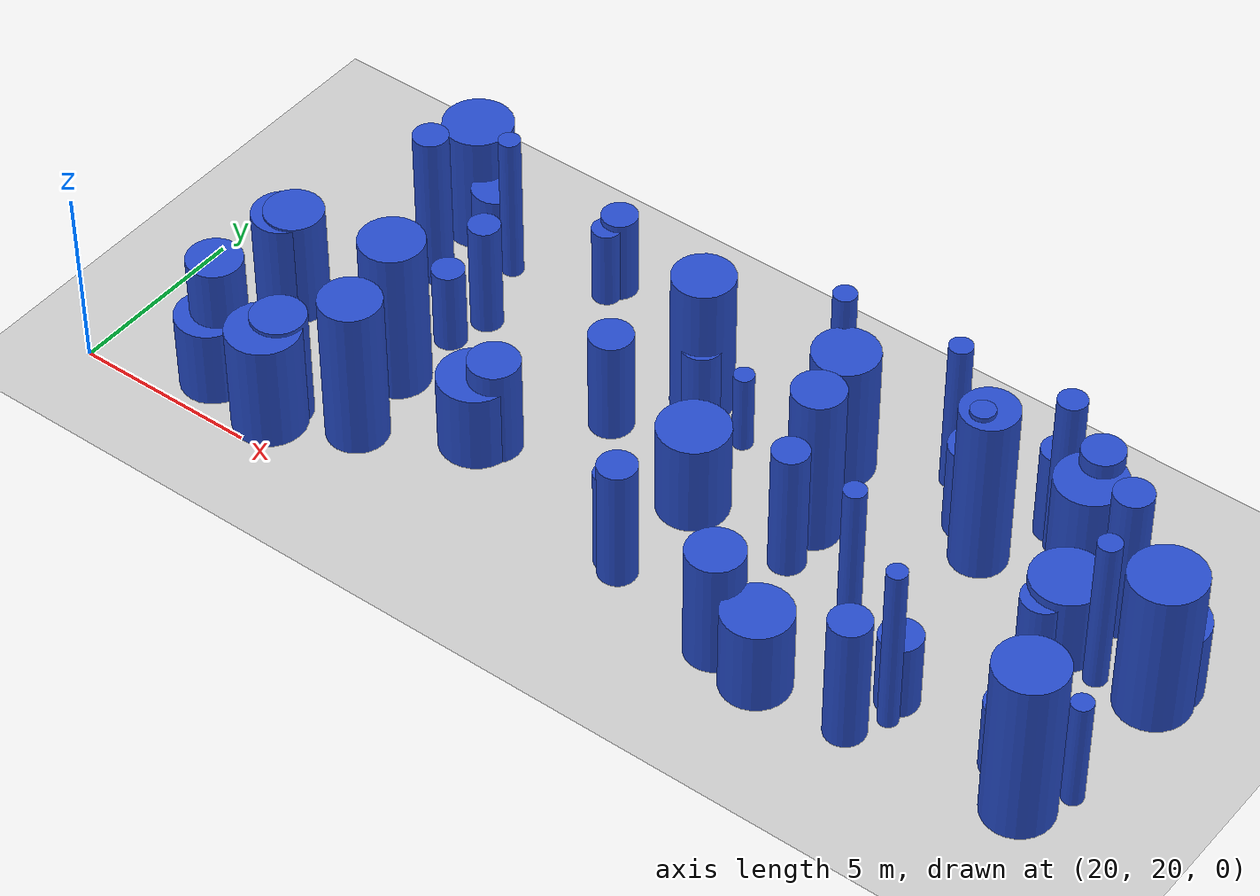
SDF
<sdf version="1.6">
 <world name="default">
  <model name="ground_plane">
   <static>1</static>
   <link name="link">
    <collision name="collision">
     <geometry><plane><normal>0 0 1</normal><size>100 100</size></plane></geometry>
     <surface><friction><ode><mu>100</mu><mu2>50</mu2></ode></friction></surface>
    </collision>
    <visual name="visual">
     <cast_shadows>0</cast_shadows>
     <geometry><plane><normal>0 0 1</normal><size>100 100</size></plane></geometry>
     <material>
      <script><uri>file://media/materials/scripts/gazebo.material</uri><name>Gazebo/Grey</name></script>
     </material>
    </visual>
   </link>
  </model>
  <model name="5">
   <static>0</static>
   <link name="link">
    <inertial>
     <mass>2</mass>
     <inertia><ixx>2.58297</ixx><ixy>0</ixy><ixz>0</ixz><iyy>2.58297</iyy><iyz>0</iyz><izz>0.837419</izz></inertia>
    </inertial>
    <collision name="collision">
     <geometry><cylinder><length>3.60355</length><radius>0.915106</radius></cylinder></geometry>
     <surface><contact><collide_without_contact>1</collide_without_contact></contact></surface>
    </collision>
    <visual name="visual">
     <geometry><cylinder><length>3.60355</length><radius>0.915106</radius></cylinder></geometry>
     <material>
      <script><uri>file://media/materials/scripts/gazebo.material</uri><name>Gazebo/Blue</name></script>
     </material>
    </visual>
    <gravity>0</gravity>
   </link>
   <pose>44.1312 28.2563 1.80178 0 -0 0</pose>
  </model>
  <model name="8">
   <static>0</static>
   <link name="link">
    <inertial>
     <mass>2</mass>
     <inertia><ixx>3.23535</ixx><ixy>0</ixy><ixz>0</ixz><iyy>3.23535</iyy><iyz>0</iyz><izz>0.666389</izz></inertia>
    </inertial>
    <collision name="collision">
     <geometry><cylinder><length>4.17288</length><radius>0.816326</radius></cylinder></geometry>
     <surface><contact><collide_without_contact>1</collide_without_contact></contact></surface>
    </collision>
    <visual name="visual">
     <geometry><cylinder><length>4.17288</length><radius>0.816326</radius></cylinder></geometry>
     <material>
      <script><uri>file://media/materials/scripts/gazebo.material</uri><name>Gazebo/Blue</name></script>
     </material>
    </visual>
    <gravity>0</gravity>
   </link>
   <pose>33.2137 27.9199 2.08644 0 -0 0</pose>
  </model>
  <model name="9">
   <static>0</static>
   <link name="link">
    <inertial>
     <mass>2</mass>
     <inertia>
      <ixx>0.837934</ixx>
      <ixy>0</ixy>
      <ixz>0</ixz>
      <iyy>0.837934</iyy>
      <iyz>0</iyz>
      <izz>0.32901</izz>
     </inertia>
    </inertial>
    <collision name="collision">
     <geometry><cylinder><length>2.01012</length><radius>0.573593</radius></cylinder></geometry>
     <surface><contact><collide_without_contact>1</collide_without_contact></contact></surface>
    </collision>
    <visual name="visual">
     <geometry><cylinder><length>2.01012</length><radius>0.573593</radius></cylinder></geometry>
     <material>
      <script><uri>file://media/materials/scripts/gazebo.material</uri><name>Gazebo/Blue</name></script>
     </material>
    </visual>
    <gravity>0</gravity>
   </link>
   <pose>44.5713 25.7943 1.00506 0 -0 0</pose>
  </model>
  <model name="24">
   <static>0</static>
   <link name="link">
    <inertial>
     <mass>2</mass>
     <inertia><ixx>1.33949</ixx><ixy>0</ixy><ixz>0</ixz><iyy>1.33949</iyy><iyz>0</iyz><izz>0.222603</izz></inertia>
    </inertial>
    <collision name="collision">
     <geometry><cylinder><length>2.71462</length><radius>0.471809</radius></cylinder></geometry>
     <surface><contact><collide_without_contact>1</collide_without_contact></contact></surface>
    </collision>
    <visual name="visual">
     <geometry><cylinder><length>2.71462</length><radius>0.471809</radius></cylinder></geometry>
     <material>
      <script><uri>file://media/materials/scripts/gazebo.material</uri><name>Gazebo/Blue</name></script>
     </material>
    </visual>
    <gravity>0</gravity>
   </link>
   <pose>42.5584 29.4439 1.35731 0 -0 0</pose>
  </model>
  <model name="31">
   <static>0</static>
   <link name="link">
    <inertial>
     <mass>2</mass>
     <inertia><ixx>2.85237</ixx><ixy>0</ixy><ixz>0</ixz><iyy>2.85237</iyy><iyz>0</iyz><izz>0.298801</izz></inertia>
    </inertial>
    <collision name="collision">
     <geometry><cylinder><length>4.02714</length><radius>0.546627</radius></cylinder></geometry>
     <surface><contact><collide_without_contact>1</collide_without_contact></contact></surface>
    </collision>
    <visual name="visual">
     <geometry><cylinder><length>4.02714</length><radius>0.546627</radius></cylinder></geometry>
     <material>
      <script><uri>file://media/materials/scripts/gazebo.material</uri><name>Gazebo/Blue</name></script>
     </material>
    </visual>
    <gravity>0</gravity>
   </link>
   <pose>44.0403 28.8417 2.01357 0 -0 0</pose>
  </model>
  <model name="42">
   <static>0</static>
   <link name="link">
    <inertial>
     <mass>2</mass>
     <inertia>
      <ixx>3.99996</ixx>
      <ixy>0</ixy>
      <ixz>0</ixz>
      <iyy>3.99996</iyy>
      <iyz>0</iyz>
      <izz>0.0681669</izz>
     </inertia>
    </inertial>
    <collision name="collision">
     <geometry><cylinder><length>4.87804</length><radius>0.261088</radius></cylinder></geometry>
     <surface><contact><collide_without_contact>1</collide_without_contact></contact></surface>
    </collision>
    <visual name="visual">
     <geometry><cylinder><length>4.87804</length><radius>0.261088</radius></cylinder></geometry>
     <material>
      <script><uri>file://media/materials/scripts/gazebo.material</uri><name>Gazebo/Blue</name></script>
     </material>
    </visual>
    <gravity>0</gravity>
   </link>
   <pose>42.9274 22.0379 2.43902 0 -0 0</pose>
  </model>
  <model name="43">
   <static>0</static>
   <link name="link">
    <inertial>
     <mass>2</mass>
     <inertia><ixx>3.60699</ixx><ixy>0</ixy><ixz>0</ixz><iyy>3.60699</iyy><iyz>0</iyz><izz>0.218199</izz></inertia>
    </inertial>
    <collision name="collision">
     <geometry><cylinder><length>4.5812</length><radius>0.467118</radius></cylinder></geometry>
     <surface><contact><collide_without_contact>1</collide_without_contact></contact></surface>
    </collision>
    <visual name="visual">
     <geometry><cylinder><length>4.5812</length><radius>0.467118</radius></cylinder></geometry>
     <material>
      <script><uri>file://media/materials/scripts/gazebo.material</uri><name>Gazebo/Blue</name></script>
     </material>
    </visual>
    <gravity>0</gravity>
   </link>
   <pose>24.9631 27.6196 2.2906 0 -0 0</pose>
  </model>
  <model name="48">
   <static>0</static>
   <link name="link">
    <inertial>
     <mass>2</mass>
     <inertia><ixx>1.49969</ixx><ixy>0</ixy><ixz>0</ixz><iyy>1.49969</iyy><iyz>0</iyz><izz>0.145403</izz></inertia>
    </inertial>
    <collision name="collision">
     <geometry><cylinder><length>2.92608</length><radius>0.381317</radius></cylinder></geometry>
     <surface><contact><collide_without_contact>1</collide_without_contact></contact></surface>
    </collision>
    <visual name="visual">
     <geometry><cylinder><length>2.92608</length><radius>0.381317</radius></cylinder></geometry>
     <material>
      <script><uri>file://media/materials/scripts/gazebo.material</uri><name>Gazebo/Blue</name></script>
     </material>
    </visual>
    <gravity>0</gravity>
   </link>
   <pose>34.7366 22.1716 1.46304 0 -0 0</pose>
  </model>
  <model name="51">
   <static>0</static>
   <link name="link">
    <inertial>
     <mass>2</mass>
     <inertia><ixx>1.88248</ixx><ixy>0</ixy><ixz>0</ixz><iyy>1.88248</iyy><iyz>0</iyz><izz>0.65983</izz></inertia>
    </inertial>
    <collision name="collision">
     <geometry><cylinder><length>3.05211</length><radius>0.812299</radius></cylinder></geometry>
     <surface><contact><collide_without_contact>1</collide_without_contact></contact></surface>
    </collision>
    <visual name="visual">
     <geometry><cylinder><length>3.05211</length><radius>0.812299</radius></cylinder></geometry>
     <material>
      <script><uri>file://media/materials/scripts/gazebo.material</uri><name>Gazebo/Blue</name></script>
     </material>
    </visual>
    <gravity>0</gravity>
   </link>
   <pose>22.736 24.4549 1.52606 0 -0 0</pose>
  </model>
  <model name="56">
   <static>0</static>
   <link name="link">
    <inertial>
     <mass>2</mass>
     <inertia><ixx>1.5368</ixx><ixy>0</ixy><ixz>0</ixz><iyy>1.5368</iyy><iyz>0</iyz><izz>0.455787</izz></inertia>
    </inertial>
    <collision name="collision">
     <geometry><cylinder><length>2.8024</length><radius>0.67512</radius></cylinder></geometry>
     <surface><contact><collide_without_contact>1</collide_without_contact></contact></surface>
    </collision>
    <visual name="visual">
     <geometry><cylinder><length>2.8024</length><radius>0.67512</radius></cylinder></geometry>
     <material>
      <script><uri>file://media/materials/scripts/gazebo.material</uri><name>Gazebo/Blue</name></script>
     </material>
    </visual>
    <gravity>0</gravity>
   </link>
   <pose>30.1142 23.6523 1.4012 0 -0 0</pose>
  </model>
  <model name="67">
   <static>0</static>
   <link name="link">
    <inertial>
     <mass>2</mass>
     <inertia><ixx>1.92986</ixx><ixy>0</ixy><ixz>0</ixz><iyy>1.92986</iyy><iyz>0</iyz><izz>0.522508</izz></inertia>
    </inertial>
    <collision name="collision">
     <geometry><cylinder><length>3.16412</length><radius>0.722847</radius></cylinder></geometry>
     <surface><contact><collide_without_contact>1</collide_without_contact></contact></surface>
    </collision>
    <visual name="visual">
     <geometry><cylinder><length>3.16412</length><radius>0.722847</radius></cylinder></geometry>
     <material>
      <script><uri>file://media/materials/scripts/gazebo.material</uri><name>Gazebo/Blue</name></script>
     </material>
    </visual>
    <gravity>0</gravity>
   </link>
   <pose>25.2068 21.443 1.58206 0 -0 0</pose>
  </model>
  <model name="72">
   <static>0</static>
   <link name="link">
    <inertial>
     <mass>2</mass>
     <inertia><ixx>3.4078</ixx><ixy>0</ixy><ixz>0</ixz><iyy>3.4078</iyy><iyz>0</iyz><izz>0.0847471</izz></inertia>
    </inertial>
    <collision name="collision">
     <geometry><cylinder><length>4.49361</length><radius>0.291114</radius></cylinder></geometry>
     <surface><contact><collide_without_contact>1</collide_without_contact></contact></surface>
    </collision>
    <visual name="visual">
     <geometry><cylinder><length>4.49361</length><radius>0.291114</radius></cylinder></geometry>
     <material>
      <script><uri>file://media/materials/scripts/gazebo.material</uri><name>Gazebo/Blue</name></script>
     </material>
    </visual>
    <gravity>0</gravity>
   </link>
   <pose>40.4975 23.8881 2.24681 0 -0 0</pose>
  </model>
  <model name="79">
   <static>0</static>
   <link name="link">
    <inertial>
     <mass>2</mass>
     <inertia><ixx>2.78535</ixx><ixy>0</ixy><ixz>0</ixz><iyy>2.78535</iyy><iyz>0</iyz><izz>0.530146</izz></inertia>
    </inertial>
    <collision name="collision">
     <geometry><cylinder><length>3.88866</length><radius>0.728112</radius></cylinder></geometry>
     <surface><contact><collide_without_contact>1</collide_without_contact></contact></surface>
    </collision>
    <visual name="visual">
     <geometry><cylinder><length>3.88866</length><radius>0.728112</radius></cylinder></geometry>
     <material>
      <script><uri>file://media/materials/scripts/gazebo.material</uri><name>Gazebo/Blue</name></script>
     </material>
    </visual>
    <gravity>0</gravity>
   </link>
   <pose>23.1949 21.4732 1.94433 0 -0 0</pose>
  </model>
  <model name="92">
   <static>0</static>
   <link name="link">
    <inertial>
     <mass>2</mass>
     <inertia><ixx>1.00566</ixx><ixy>0</ixy><ixz>0</ixz><iyy>1.00566</iyy><iyz>0</iyz><izz>0.311472</izz></inertia>
    </inertial>
    <collision name="collision">
     <geometry><cylinder><length>2.25822</length><radius>0.558097</radius></cylinder></geometry>
     <surface><contact><collide_without_contact>1</collide_without_contact></contact></surface>
    </collision>
    <visual name="visual">
     <geometry><cylinder><length>2.25822</length><radius>0.558097</radius></cylinder></geometry>
     <material>
      <script><uri>file://media/materials/scripts/gazebo.material</uri><name>Gazebo/Blue</name></script>
     </material>
    </visual>
    <gravity>0</gravity>
   </link>
   <pose>33.4249 27.6001 1.12911 0 -0 0</pose>
  </model>
  <model name="96">
   <static>0</static>
   <link name="link">
    <inertial>
     <mass>2</mass>
     <inertia><ixx>4.18802</ixx><ixy>0</ixy><ixz>0</ixz><iyy>4.18802</iyy><iyz>0</iyz><izz>0.550125</izz></inertia>
    </inertial>
    <collision name="collision">
     <geometry><cylinder><length>4.84538</length><radius>0.741704</radius></cylinder></geometry>
     <surface><contact><collide_without_contact>1</collide_without_contact></contact></surface>
    </collision>
    <visual name="visual">
     <geometry><cylinder><length>4.84538</length><radius>0.741704</radius></cylinder></geometry>
     <material>
      <script><uri>file://media/materials/scripts/gazebo.material</uri><name>Gazebo/Blue</name></script>
     </material>
    </visual>
    <gravity>0</gravity>
   </link>
   <pose>41.6394 27.6337 2.42269 0 -0 0</pose>
  </model>
  <model name="104">
   <static>0</static>
   <link name="link">
    <inertial>
     <mass>2</mass>
     <inertia><ixx>2.2195</ixx><ixy>0</ixy><ixz>0</ixz><iyy>2.2195</iyy><iyz>0</iyz><izz>0.255192</izz></inertia>
    </inertial>
    <collision name="collision">
     <geometry><cylinder><length>3.5428</length><radius>0.505166</radius></cylinder></geometry>
     <surface><contact><collide_without_contact>1</collide_without_contact></contact></surface>
    </collision>
    <visual name="visual">
     <geometry><cylinder><length>3.5428</length><radius>0.505166</radius></cylinder></geometry>
     <material>
      <script><uri>file://media/materials/scripts/gazebo.material</uri><name>Gazebo/Blue</name></script>
     </material>
    </visual>
    <gravity>0</gravity>
   </link>
   <pose>35.1244 22.0143 1.7714 0 -0 0</pose>
  </model>
  <model name="122">
   <static>0</static>
   <link name="link">
    <inertial>
     <mass>2</mass>
     <inertia><ixx>1.62985</ixx><ixy>0</ixy><ixz>0</ixz><iyy>1.62985</iyy><iyz>0</iyz><izz>0.333872</izz></inertia>
    </inertial>
    <collision name="collision">
     <geometry><cylinder><length>2.96268</length><radius>0.577817</radius></cylinder></geometry>
     <surface><contact><collide_without_contact>1</collide_without_contact></contact></surface>
    </collision>
    <visual name="visual">
     <geometry><cylinder><length>2.96268</length><radius>0.577817</radius></cylinder></geometry>
     <material>
      <script><uri>file://media/materials/scripts/gazebo.material</uri><name>Gazebo/Blue</name></script>
     </material>
    </visual>
    <gravity>0</gravity>
   </link>
   <pose>31.8996 25.9543 1.48134 0 -0 0</pose>
  </model>
  <model name="124">
   <static>0</static>
   <link name="link">
    <inertial>
     <mass>2</mass>
     <inertia><ixx>1.21882</ixx><ixy>0</ixy><ixz>0</ixz><iyy>1.21882</iyy><iyz>0</iyz><izz>0.784384</izz></inertia>
    </inertial>
    <collision name="collision">
     <geometry><cylinder><length>2.22706</length><radius>0.885655</radius></cylinder></geometry>
     <surface><contact><collide_without_contact>1</collide_without_contact></contact></surface>
    </collision>
    <visual name="visual">
     <geometry><cylinder><length>2.22706</length><radius>0.885655</radius></cylinder></geometry>
     <material>
      <script><uri>file://media/materials/scripts/gazebo.material</uri><name>Gazebo/Blue</name></script>
     </material>
    </visual>
    <gravity>0</gravity>
   </link>
   <pose>23.1164 21.1853 1.11353 0 -0 0</pose>
  </model>
  <model name="136">
   <static>0</static>
   <link name="link">
    <inertial>
     <mass>2</mass>
     <inertia><ixx>2.0309</ixx><ixy>0</ixy><ixz>0</ixz><iyy>2.0309</iyy><iyz>0</iyz><izz>0.942114</izz></inertia>
    </inertial>
    <collision name="collision">
     <geometry><cylinder><length>3.05925</length><radius>0.970626</radius></cylinder></geometry>
     <surface><contact><collide_without_contact>1</collide_without_contact></contact></surface>
    </collision>
    <visual name="visual">
     <geometry><cylinder><length>3.05925</length><radius>0.970626</radius></cylinder></geometry>
     <material>
      <script><uri>file://media/materials/scripts/gazebo.material</uri><name>Gazebo/Blue</name></script>
     </material>
    </visual>
    <gravity>0</gravity>
   </link>
   <pose>25.1529 20.9383 1.52963 0 -0 0</pose>
  </model>
  <model name="149">
   <static>0</static>
   <link name="link">
    <inertial>
     <mass>2</mass>
     <inertia>
      <ixx>3.60129</ixx>
      <ixy>0</ixy>
      <ixz>0</ixz>
      <iyy>3.60129</iyy>
      <iyz>0</iyz>
      <izz>0.0940447</izz>
     </inertia>
    </inertial>
    <collision name="collision">
     <geometry><cylinder><length>4.61797</length><radius>0.306667</radius></cylinder></geometry>
     <surface><contact><collide_without_contact>1</collide_without_contact></contact></surface>
    </collision>
    <visual name="visual">
     <geometry><cylinder><length>4.61797</length><radius>0.306667</radius></cylinder></geometry>
     <material>
      <script><uri>file://media/materials/scripts/gazebo.material</uri><name>Gazebo/Blue</name></script>
     </material>
    </visual>
    <gravity>0</gravity>
   </link>
   <pose>36.5534 29.0598 2.30898 0 -0 0</pose>
  </model>
  <model name="181">
   <static>0</static>
   <link name="link">
    <inertial>
     <mass>2</mass>
     <inertia><ixx>1.56642</ixx><ixy>0</ixy><ixz>0</ixz><iyy>1.56642</iyy><iyz>0</iyz><izz>0.869834</izz></inertia>
    </inertial>
    <collision name="collision">
     <geometry><cylinder><length>2.60557</length><radius>0.932649</radius></cylinder></geometry>
     <surface><contact><collide_without_contact>1</collide_without_contact></contact></surface>
    </collision>
    <visual name="visual">
     <geometry><cylinder><length>2.60557</length><radius>0.932649</radius></cylinder></geometry>
     <material>
      <script><uri>file://media/materials/scripts/gazebo.material</uri><name>Gazebo/Blue</name></script>
     </material>
    </visual>
    <gravity>0</gravity>
   </link>
   <pose>35.1911 24.9028 1.30279 0 -0 0</pose>
  </model>
  <model name="182">
   <static>0</static>
   <link name="link">
    <inertial>
     <mass>2</mass>
     <inertia>
      <ixx>0.957731</ixx>
      <ixy>0</ixy>
      <ixz>0</ixz>
      <iyy>0.957731</iyy>
      <iyz>0</iyz>
      <izz>0.303056</izz>
     </inertia>
    </inertial>
    <collision name="collision">
     <geometry><cylinder><length>2.19937</length><radius>0.550506</radius></cylinder></geometry>
     <surface><contact><collide_without_contact>1</collide_without_contact></contact></surface>
    </collision>
    <visual name="visual">
     <geometry><cylinder><length>2.19937</length><radius>0.550506</radius></cylinder></geometry>
     <material>
      <script><uri>file://media/materials/scripts/gazebo.material</uri><name>Gazebo/Blue</name></script>
     </material>
    </visual>
    <gravity>0</gravity>
   </link>
   <pose>42.746 22.6564 1.09968 0 -0 0</pose>
  </model>
  <model name="185">
   <static>0</static>
   <link name="link">
    <inertial>
     <mass>2</mass>
     <inertia><ixx>1.36438</ixx><ixy>0</ixy><ixz>0</ixz><iyy>1.36438</iyy><iyz>0</iyz><izz>0.802086</izz></inertia>
    </inertial>
    <collision name="collision">
     <geometry><cylinder><length>2.40416</length><radius>0.895593</radius></cylinder></geometry>
     <surface><contact><collide_without_contact>1</collide_without_contact></contact></surface>
    </collision>
    <visual name="visual">
     <geometry><cylinder><length>2.40416</length><radius>0.895593</radius></cylinder></geometry>
     <material>
      <script><uri>file://media/materials/scripts/gazebo.material</uri><name>Gazebo/Blue</name></script>
     </material>
    </visual>
    <gravity>0</gravity>
   </link>
   <pose>39.8308 21.1172 1.20208 0 -0 0</pose>
  </model>
  <model name="186">
   <static>0</static>
   <link name="link">
    <inertial>
     <mass>2</mass>
     <inertia><ixx>1.10663</ixx><ixy>0</ixy><ixz>0</ixz><iyy>1.10663</iyy><iyz>0</iyz><izz>0.234851</izz></inertia>
    </inertial>
    <collision name="collision">
     <geometry><cylinder><length>2.43624</length><radius>0.484614</radius></cylinder></geometry>
     <surface><contact><collide_without_contact>1</collide_without_contact></contact></surface>
    </collision>
    <visual name="visual">
     <geometry><cylinder><length>2.43624</length><radius>0.484614</radius></cylinder></geometry>
     <material>
      <script><uri>file://media/materials/scripts/gazebo.material</uri><name>Gazebo/Blue</name></script>
     </material>
    </visual>
    <gravity>0</gravity>
   </link>
   <pose>29.0255 30.0436 1.21812 0 -0 0</pose>
  </model>
  <model name="194">
   <static>0</static>
   <link name="link">
    <inertial>
     <mass>2</mass>
     <inertia><ixx>3.84056</ixx><ixy>0</ixy><ixz>0</ixz><iyy>3.84056</iyy><iyz>0</iyz><izz>0.462859</izz></inertia>
    </inertial>
    <collision name="collision">
     <geometry><cylinder><length>4.65347</length><radius>0.680337</radius></cylinder></geometry>
     <surface><contact><collide_without_contact>1</collide_without_contact></contact></surface>
    </collision>
    <visual name="visual">
     <geometry><cylinder><length>4.65347</length><radius>0.680337</radius></cylinder></geometry>
     <material>
      <script><uri>file://media/materials/scripts/gazebo.material</uri><name>Gazebo/Blue</name></script>
     </material>
    </visual>
    <gravity>0</gravity>
   </link>
   <pose>38.0163 25.9434 2.32673 0 -0 0</pose>
  </model>
  <model name="199">
   <static>0</static>
   <link name="link">
    <inertial>
     <mass>2</mass>
     <inertia>
      <ixx>3.32704</ixx>
      <ixy>0</ixy>
      <ixz>0</ixz>
      <iyy>3.32704</iyy>
      <iyz>0</iyz>
      <izz>0.0950179</izz>
     </inertia>
    </inertial>
    <collision name="collision">
     <geometry><cylinder><length>4.4359</length><radius>0.30825</radius></cylinder></geometry>
     <surface><contact><collide_without_contact>1</collide_without_contact></contact></surface>
    </collision>
    <visual name="visual">
     <geometry><cylinder><length>4.4359</length><radius>0.30825</radius></cylinder></geometry>
     <material>
      <script><uri>file://media/materials/scripts/gazebo.material</uri><name>Gazebo/Blue</name></script>
     </material>
    </visual>
    <gravity>0</gravity>
   </link>
   <pose>39.6729 29.3954 2.21795 0 -0 0</pose>
  </model>
  <model name="216">
   <static>0</static>
   <link name="link">
    <inertial>
     <mass>2</mass>
     <inertia><ixx>1.2816</ixx><ixy>0</ixy><ixz>0</ixz><iyy>1.2816</iyy><iyz>0</iyz><izz>0.071283</izz></inertia>
    </inertial>
    <collision name="collision">
     <geometry><cylinder><length>2.73418</length><radius>0.266989</radius></cylinder></geometry>
     <surface><contact><collide_without_contact>1</collide_without_contact></contact></surface>
    </collision>
    <visual name="visual">
     <geometry><cylinder><length>2.73418</length><radius>0.266989</radius></cylinder></geometry>
     <material>
      <script><uri>file://media/materials/scripts/gazebo.material</uri><name>Gazebo/Blue</name></script>
     </material>
    </visual>
    <gravity>0</gravity>
   </link>
   <pose>36.6887 27.8581 1.36709 0 -0 0</pose>
  </model>
  <model name="224">
   <static>0</static>
   <link name="link">
    <inertial>
     <mass>2</mass>
     <inertia><ixx>4.17367</ixx><ixy>0</ixy><ixz>0</ixz><iyy>4.17367</iyy><iyz>0</iyz><izz>0.821314</izz></inertia>
    </inertial>
    <collision name="collision">
     <geometry><cylinder><length>4.75164</length><radius>0.906264</radius></cylinder></geometry>
     <surface><contact><collide_without_contact>1</collide_without_contact></contact></surface>
    </collision>
    <visual name="visual">
     <geometry><cylinder><length>4.75164</length><radius>0.906264</radius></cylinder></geometry>
     <material>
      <script><uri>file://media/materials/scripts/gazebo.material</uri><name>Gazebo/Blue</name></script>
     </material>
    </visual>
    <gravity>0</gravity>
   </link>
   <pose>46.7808 21.5998 2.37582 0 -0 0</pose>
  </model>
  <model name="231">
   <static>0</static>
   <link name="link">
    <inertial>
     <mass>2</mass>
     <inertia><ixx>1.2889</ixx><ixy>0</ixy><ixz>0</ixz><iyy>1.2889</iyy><iyz>0</iyz><izz>0.955074</izz></inertia>
    </inertial>
    <collision name="collision">
     <geometry><cylinder><length>2.20639</length><radius>0.977279</radius></cylinder></geometry>
     <surface><contact><collide_without_contact>1</collide_without_contact></contact></surface>
    </collision>
    <visual name="visual">
     <geometry><cylinder><length>2.20639</length><radius>0.977279</radius></cylinder></geometry>
     <material>
      <script><uri>file://media/materials/scripts/gazebo.material</uri><name>Gazebo/Blue</name></script>
     </material>
    </visual>
    <gravity>0</gravity>
   </link>
   <pose>47.3565 26.7718 1.1032 0 -0 0</pose>
  </model>
  <model name="237">
   <static>0</static>
   <link name="link">
    <inertial>
     <mass>2</mass>
     <inertia>
      <ixx>0.971185</ixx>
      <ixy>0</ixy>
      <ixz>0</ixz>
      <iyy>0.971185</iyy>
      <iyz>0</iyz>
      <izz>0.227514</izz>
     </inertia>
    </inertial>
    <collision name="collision">
     <geometry><cylinder><length>2.26816</length><radius>0.476984</radius></cylinder></geometry>
     <surface><contact><collide_without_contact>1</collide_without_contact></contact></surface>
    </collision>
    <visual name="visual">
     <geometry><cylinder><length>2.26816</length><radius>0.476984</radius></cylinder></geometry>
     <material>
      <script><uri>file://media/materials/scripts/gazebo.material</uri><name>Gazebo/Blue</name></script>
     </material>
    </visual>
    <gravity>0</gravity>
   </link>
   <pose>26.3188 23.1014 1.13408 0 -0 0</pose>
  </model>
  <model name="239">
   <static>0</static>
   <link name="link">
    <inertial>
     <mass>2</mass>
     <inertia><ixx>1.29959</ixx><ixy>0</ixy><ixz>0</ixz><iyy>1.29959</iyy><iyz>0</iyz><izz>0.903055</izz></inertia>
    </inertial>
    <collision name="collision">
     <geometry><cylinder><length>2.25575</length><radius>0.950292</radius></cylinder></geometry>
     <surface><contact><collide_without_contact>1</collide_without_contact></contact></surface>
    </collision>
    <visual name="visual">
     <geometry><cylinder><length>2.25575</length><radius>0.950292</radius></cylinder></geometry>
     <material>
      <script><uri>file://media/materials/scripts/gazebo.material</uri><name>Gazebo/Blue</name></script>
     </material>
    </visual>
    <gravity>0</gravity>
   </link>
   <pose>44.7788 26.4577 1.12787 0 -0 0</pose>
  </model>
  <model name="248">
   <static>0</static>
   <link name="link">
    <inertial>
     <mass>2</mass>
     <inertia><ixx>3.49577</ixx><ixy>0</ixy><ixz>0</ixz><iyy>3.49577</iyy><iyz>0</iyz><izz>0.656015</izz></inertia>
    </inertial>
    <collision name="collision">
     <geometry><cylinder><length>4.35965</length><radius>0.809948</radius></cylinder></geometry>
     <surface><contact><collide_without_contact>1</collide_without_contact></contact></surface>
    </collision>
    <visual name="visual">
     <geometry><cylinder><length>4.35965</length><radius>0.809948</radius></cylinder></geometry>
     <material>
      <script><uri>file://media/materials/scripts/gazebo.material</uri><name>Gazebo/Blue</name></script>
     </material>
    </visual>
    <gravity>0</gravity>
   </link>
   <pose>27.1257 21.9441 2.17983 0 -0 0</pose>
  </model>
  <model name="258">
   <static>0</static>
   <link name="link">
    <inertial>
     <mass>2</mass>
     <inertia>
      <ixx>0.903155</ixx>
      <ixy>0</ixy>
      <ixz>0</ixz>
      <iyy>0.903155</iyy>
      <iyz>0</iyz>
      <izz>0.348919</izz>
     </inertia>
    </inertial>
    <collision name="collision">
     <geometry><cylinder><length>2.09097</length><radius>0.590694</radius></cylinder></geometry>
     <surface><contact><collide_without_contact>1</collide_without_contact></contact></surface>
    </collision>
    <visual name="visual">
     <geometry><cylinder><length>2.09097</length><radius>0.590694</radius></cylinder></geometry>
     <material>
      <script><uri>file://media/materials/scripts/gazebo.material</uri><name>Gazebo/Blue</name></script>
     </material>
    </visual>
    <gravity>0</gravity>
   </link>
   <pose>45.7898 22.4995 1.04549 0 -0 0</pose>
  </model>
  <model name="264">
   <static>0</static>
   <link name="link">
    <inertial>
     <mass>2</mass>
     <inertia><ixx>2.36644</ixx><ixy>0</ixy><ixz>0</ixz><iyy>2.36644</iyy><iyz>0</iyz><izz>0.283429</izz></inertia>
    </inertial>
    <collision name="collision">
     <geometry><cylinder><length>3.65354</length><radius>0.53238</radius></cylinder></geometry>
     <surface><contact><collide_without_contact>1</collide_without_contact></contact></surface>
    </collision>
    <visual name="visual">
     <geometry><cylinder><length>3.65354</length><radius>0.53238</radius></cylinder></geometry>
     <material>
      <script><uri>file://media/materials/scripts/gazebo.material</uri><name>Gazebo/Blue</name></script>
     </material>
    </visual>
    <gravity>0</gravity>
   </link>
   <pose>42.3264 21.1669 1.82677 0 -0 0</pose>
  </model>
  <model name="266">
   <static>0</static>
   <link name="link">
    <inertial>
     <mass>2</mass>
     <inertia><ixx>1.4408</ixx><ixy>0</ixy><ixz>0</ixz><iyy>1.4408</iyy><iyz>0</iyz><izz>0.768074</izz></inertia>
    </inertial>
    <collision name="collision">
     <geometry><cylinder><length>2.51805</length><radius>0.876398</radius></cylinder></geometry>
     <surface><contact><collide_without_contact>1</collide_without_contact></contact></surface>
    </collision>
    <visual name="visual">
     <geometry><cylinder><length>2.51805</length><radius>0.876398</radius></cylinder></geometry>
     <material>
      <script><uri>file://media/materials/scripts/gazebo.material</uri><name>Gazebo/Blue</name></script>
     </material>
    </visual>
    <gravity>0</gravity>
   </link>
   <pose>43.8139 29.0233 1.25902 0 -0 0</pose>
  </model>
  <model name="272">
   <static>0</static>
   <link name="link">
    <inertial>
     <mass>2</mass>
     <inertia>
      <ixx>1.69884</ixx>
      <ixy>0</ixy>
      <ixz>0</ixz>
      <iyy>1.69884</iyy>
      <iyz>0</iyz>
      <izz>0.0782253</izz>
     </inertia>
    </inertial>
    <collision name="collision">
     <geometry><cylinder><length>3.15569</length><radius>0.279688</radius></cylinder></geometry>
     <surface><contact><collide_without_contact>1</collide_without_contact></contact></surface>
    </collision>
    <visual name="visual">
     <geometry><cylinder><length>3.15569</length><radius>0.279688</radius></cylinder></geometry>
     <material>
      <script><uri>file://media/materials/scripts/gazebo.material</uri><name>Gazebo/Blue</name></script>
     </material>
    </visual>
    <gravity>0</gravity>
   </link>
   <pose>47.5592 22.6438 1.57784 0 -0 0</pose>
  </model>
  <model name="299">
   <static>0</static>
   <link name="link">
    <inertial>
     <mass>2</mass>
     <inertia>
      <ixx>0.921945</ixx>
      <ixy>0</ixy>
      <ixz>0</ixz>
      <iyy>0.921945</iyy>
      <iyz>0</iyz>
      <izz>0.149875</izz>
     </inertia>
    </inertial>
    <collision name="collision">
     <geometry><cylinder><length>2.25434</length><radius>0.387137</radius></cylinder></geometry>
     <surface><contact><collide_without_contact>1</collide_without_contact></contact></surface>
    </collision>
    <visual name="visual">
     <geometry><cylinder><length>2.25434</length><radius>0.387137</radius></cylinder></geometry>
     <material>
      <script><uri>file://media/materials/scripts/gazebo.material</uri><name>Gazebo/Blue</name></script>
     </material>
    </visual>
    <gravity>0</gravity>
   </link>
   <pose>28.9395 29.6033 1.12717 0 -0 0</pose>
  </model>
  <model name="330">
   <static>0</static>
   <link name="link">
    <inertial>
     <mass>2</mass>
     <inertia><ixx>4.17226</ixx><ixy>0</ixy><ixz>0</ixz><iyy>4.17226</iyy><iyz>0</iyz><izz>0.101442</izz></inertia>
    </inertial>
    <collision name="collision">
     <geometry><cylinder><length>4.97285</length><radius>0.318499</radius></cylinder></geometry>
     <surface><contact><collide_without_contact>1</collide_without_contact></contact></surface>
    </collision>
    <visual name="visual">
     <geometry><cylinder><length>4.97285</length><radius>0.318499</radius></cylinder></geometry>
     <material>
      <script><uri>file://media/materials/scripts/gazebo.material</uri><name>Gazebo/Blue</name></script>
     </material>
    </visual>
    <gravity>0</gravity>
   </link>
   <pose>41.5867 27.4162 2.48642 0 -0 0</pose>
  </model>
  <model name="344">
   <static>0</static>
   <link name="link">
    <inertial>
     <mass>2</mass>
     <inertia><ixx>1.82524</ixx><ixy>0</ixy><ixz>0</ixz><iyy>1.82524</iyy><iyz>0</iyz><izz>0.178721</izz></inertia>
    </inertial>
    <collision name="collision">
     <geometry><cylinder><length>3.22727</length><radius>0.422754</radius></cylinder></geometry>
     <surface><contact><collide_without_contact>1</collide_without_contact></contact></surface>
    </collision>
    <visual name="visual">
     <geometry><cylinder><length>3.22727</length><radius>0.422754</radius></cylinder></geometry>
     <material>
      <script><uri>file://media/materials/scripts/gazebo.material</uri><name>Gazebo/Blue</name></script>
     </material>
    </visual>
    <gravity>0</gravity>
   </link>
   <pose>27.1359 26.9899 1.61364 0 -0 0</pose>
  </model>
  <model name="356">
   <static>0</static>
   <link name="link">
    <inertial>
     <mass>2</mass>
     <inertia><ixx>3.23111</ixx><ixy>0</ixy><ixz>0</ixz><iyy>3.23111</iyy><iyz>0</iyz><izz>0.254097</izz></inertia>
    </inertial>
    <collision name="collision">
     <geometry><cylinder><length>4.3156</length><radius>0.504081</radius></cylinder></geometry>
     <surface><contact><collide_without_contact>1</collide_without_contact></contact></surface>
    </collision>
    <visual name="visual">
     <geometry><cylinder><length>4.3156</length><radius>0.504081</radius></cylinder></geometry>
     <material>
      <script><uri>file://media/materials/scripts/gazebo.material</uri><name>Gazebo/Blue</name></script>
     </material>
    </visual>
    <gravity>0</gravity>
   </link>
   <pose>45.4904 27.8195 2.1578 0 -0 0</pose>
  </model>
  <model name="364">
   <static>0</static>
   <link name="link">
    <inertial>
     <mass>2</mass>
     <inertia><ixx>2.72209</ixx><ixy>0</ixy><ixz>0</ixz><iyy>2.72209</iyy><iyz>0</iyz><izz>0.747249</izz></inertia>
    </inertial>
    <collision name="collision">
     <geometry><cylinder><length>3.75377</length><radius>0.864435</radius></cylinder></geometry>
     <surface><contact><collide_without_contact>1</collide_without_contact></contact></surface>
    </collision>
    <visual name="visual">
     <geometry><cylinder><length>3.75377</length><radius>0.864435</radius></cylinder></geometry>
     <material>
      <script><uri>file://media/materials/scripts/gazebo.material</uri><name>Gazebo/Blue</name></script>
     </material>
    </visual>
    <gravity>0</gravity>
   </link>
   <pose>37.2355 28.1991 1.87688 0 -0 0</pose>
  </model>
  <model name="366">
   <static>0</static>
   <link name="link">
    <inertial>
     <mass>2</mass>
     <inertia><ixx>3.38932</ixx><ixy>0</ixy><ixz>0</ixz><iyy>3.38932</iyy><iyz>0</iyz><izz>0.926886</izz></inertia>
    </inertial>
    <collision name="collision">
     <geometry><cylinder><length>4.1899</length><radius>0.962749</radius></cylinder></geometry>
     <surface><contact><collide_without_contact>1</collide_without_contact></contact></surface>
    </collision>
    <visual name="visual">
     <geometry><cylinder><length>4.1899</length><radius>0.962749</radius></cylinder></geometry>
     <material>
      <script><uri>file://media/materials/scripts/gazebo.material</uri><name>Gazebo/Blue</name></script>
     </material>
    </visual>
    <gravity>0</gravity>
   </link>
   <pose>47.4421 26.2026 2.09495 0 -0 0</pose>
  </model>
  <model name="381">
   <static>0</static>
   <link name="link">
    <inertial>
     <mass>2</mass>
     <inertia>
      <ixx>3.36322</ixx>
      <ixy>0</ixy>
      <ixz>0</ixz>
      <iyy>3.36322</iyy>
      <iyz>0</iyz>
      <izz>0.0916713</izz>
     </inertia>
    </inertial>
    <collision name="collision">
     <geometry><cylinder><length>4.46142</length><radius>0.302773</radius></cylinder></geometry>
     <surface><contact><collide_without_contact>1</collide_without_contact></contact></surface>
    </collision>
    <visual name="visual">
     <geometry><cylinder><length>4.46142</length><radius>0.302773</radius></cylinder></geometry>
     <material>
      <script><uri>file://media/materials/scripts/gazebo.material</uri><name>Gazebo/Blue</name></script>
     </material>
    </visual>
    <gravity>0</gravity>
   </link>
   <pose>45.9941 26.014 2.23071 0 -0 0</pose>
  </model>
  <model name="389">
   <static>0</static>
   <link name="link">
    <inertial>
     <mass>2</mass>
     <inertia><ixx>2.41804</ixx><ixy>0</ixy><ixz>0</ixz><iyy>2.41804</iyy><iyz>0</iyz><izz>0.869798</izz></inertia>
    </inertial>
    <collision name="collision">
     <geometry><cylinder><length>3.44947</length><radius>0.93263</radius></cylinder></geometry>
     <surface><contact><collide_without_contact>1</collide_without_contact></contact></surface>
    </collision>
    <visual name="visual">
     <geometry><cylinder><length>3.44947</length><radius>0.93263</radius></cylinder></geometry>
     <material>
      <script><uri>file://media/materials/scripts/gazebo.material</uri><name>Gazebo/Blue</name></script>
     </material>
    </visual>
    <gravity>0</gravity>
   </link>
   <pose>24.7094 29.769 1.72473 0 -0 0</pose>
  </model>
  <model name="411">
   <static>0</static>
   <link name="link">
    <inertial>
     <mass>2</mass>
     <inertia><ixx>1.92634</ixx><ixy>0</ixy><ixz>0</ixz><iyy>1.92634</iyy><iyz>0</iyz><izz>0.617992</izz></inertia>
    </inertial>
    <collision name="collision">
     <geometry><cylinder><length>3.11513</length><radius>0.786125</radius></cylinder></geometry>
     <surface><contact><collide_without_contact>1</collide_without_contact></contact></surface>
    </collision>
    <visual name="visual">
     <geometry><cylinder><length>3.11513</length><radius>0.786125</radius></cylinder></geometry>
     <material>
      <script><uri>file://media/materials/scripts/gazebo.material</uri><name>Gazebo/Blue</name></script>
     </material>
    </visual>
    <gravity>0</gravity>
   </link>
   <pose>22.9403 24.641 1.55757 0 -0 0</pose>
  </model>
  <model name="430">
   <static>0</static>
   <link name="link">
    <inertial>
     <mass>2</mass>
     <inertia><ixx>1.30345</ixx><ixy>0</ixy><ixz>0</ixz><iyy>1.30345</iyy><iyz>0</iyz><izz>0.959896</izz></inertia>
    </inertial>
    <collision name="collision">
     <geometry><cylinder><length>2.22284</length><radius>0.979743</radius></cylinder></geometry>
     <surface><contact><collide_without_contact>1</collide_without_contact></contact></surface>
    </collision>
    <visual name="visual">
     <geometry><cylinder><length>2.22284</length><radius>0.979743</radius></cylinder></geometry>
     <material>
      <script><uri>file://media/materials/scripts/gazebo.material</uri><name>Gazebo/Blue</name></script>
     </material>
    </visual>
    <gravity>0</gravity>
   </link>
   <pose>29.6859 23.4477 1.11142 0 -0 0</pose>
  </model>
  <model name="432">
   <static>0</static>
   <link name="link">
    <inertial>
     <mass>2</mass>
     <inertia>
      <ixx>3.14112</ixx>
      <ixy>0</ixy>
      <ixz>0</ixz>
      <iyy>3.14112</iyy>
      <iyz>0</iyz>
      <izz>0.0848641</izz>
     </inertia>
    </inertial>
    <collision name="collision">
     <geometry><cylinder><length>4.31186</length><radius>0.291314</radius></cylinder></geometry>
     <surface><contact><collide_without_contact>1</collide_without_contact></contact></surface>
    </collision>
    <visual name="visual">
     <geometry><cylinder><length>4.31186</length><radius>0.291314</radius></cylinder></geometry>
     <material>
      <script><uri>file://media/materials/scripts/gazebo.material</uri><name>Gazebo/Blue</name></script>
     </material>
    </visual>
    <gravity>0</gravity>
   </link>
   <pose>26.4293 28.9123 2.15593 0 -0 0</pose>
  </model>
  <model name="441">
   <static>0</static>
   <link name="link">
    <inertial>
     <mass>2</mass>
     <inertia>
      <ixx>0.911907</ixx>
      <ixy>0</ixy>
      <ixz>0</ixz>
      <iyy>0.911907</iyy>
      <iyz>0</iyz>
      <izz>0.073364</izz>
     </inertia>
    </inertial>
    <collision name="collision">
     <geometry><cylinder><length>2.29158</length><radius>0.270858</radius></cylinder></geometry>
     <surface><contact><collide_without_contact>1</collide_without_contact></contact></surface>
    </collision>
    <visual name="visual">
     <geometry><cylinder><length>2.29158</length><radius>0.270858</radius></cylinder></geometry>
     <material>
      <script><uri>file://media/materials/scripts/gazebo.material</uri><name>Gazebo/Blue</name></script>
     </material>
    </visual>
    <gravity>0</gravity>
   </link>
   <pose>34.879 27.3493 1.14579 0 -0 0</pose>
  </model>
  <model name="442">
   <static>0</static>
   <link name="link">
    <inertial>
     <mass>2</mass>
     <inertia><ixx>2.10342</ixx><ixy>0</ixy><ixz>0</ixz><iyy>2.10342</iyy><iyz>0</iyz><izz>0.549452</izz></inertia>
    </inertial>
    <collision name="collision">
     <geometry><cylinder><length>3.31242</length><radius>0.74125</radius></cylinder></geometry>
     <surface><contact><collide_without_contact>1</collide_without_contact></contact></surface>
    </collision>
    <visual name="visual">
     <geometry><cylinder><length>3.31242</length><radius>0.74125</radius></cylinder></geometry>
     <material>
      <script><uri>file://media/materials/scripts/gazebo.material</uri><name>Gazebo/Blue</name></script>
     </material>
    </visual>
    <gravity>0</gravity>
   </link>
   <pose>38.4417 21.3712 1.65621 0 -0 0</pose>
  </model>
  <model name="449">
   <static>0</static>
   <link name="link">
    <inertial>
     <mass>2</mass>
     <inertia><ixx>1.04048</ixx><ixy>0</ixy><ixz>0</ixz><iyy>1.04048</iyy><iyz>0</iyz><izz>0.413631</izz></inertia>
    </inertial>
    <collision name="collision">
     <geometry><cylinder><length>2.23652</length><radius>0.643141</radius></cylinder></geometry>
     <surface><contact><collide_without_contact>1</collide_without_contact></contact></surface>
    </collision>
    <visual name="visual">
     <geometry><cylinder><length>2.23652</length><radius>0.643141</radius></cylinder></geometry>
     <material>
      <script><uri>file://media/materials/scripts/gazebo.material</uri><name>Gazebo/Blue</name></script>
     </material>
    </visual>
    <gravity>0</gravity>
   </link>
   <pose>25.7504 29.1506 1.11826 0 -0 0</pose>
  </model>
  <model name="460">
   <static>0</static>
   <link name="link">
    <inertial>
     <mass>2</mass>
     <inertia><ixx>3.74994</ixx><ixy>0</ixy><ixz>0</ixz><iyy>3.74994</iyy><iyz>0</iyz><izz>0.725795</izz></inertia>
    </inertial>
    <collision name="collision">
     <geometry><cylinder><length>4.50802</length><radius>0.851936</radius></cylinder></geometry>
     <surface><contact><collide_without_contact>1</collide_without_contact></contact></surface>
    </collision>
    <visual name="visual">
     <geometry><cylinder><length>4.50802</length><radius>0.851936</radius></cylinder></geometry>
     <material>
      <script><uri>file://media/materials/scripts/gazebo.material</uri><name>Gazebo/Blue</name></script>
     </material>
    </visual>
    <gravity>0</gravity>
   </link>
   <pose>26.6543 24.0745 2.25401 0 -0 0</pose>
  </model>
  <model name="465">
   <static>0</static>
   <link name="link">
    <inertial>
     <mass>2</mass>
     <inertia><ixx>1.42329</ixx><ixy>0</ixy><ixz>0</ixz><iyy>1.42329</iyy><iyz>0</iyz><izz>0.492932</izz></inertia>
    </inertial>
    <collision name="collision">
     <geometry><cylinder><length>2.65724</length><radius>0.702091</radius></cylinder></geometry>
     <surface><contact><collide_without_contact>1</collide_without_contact></contact></surface>
    </collision>
    <visual name="visual">
     <geometry><cylinder><length>2.65724</length><radius>0.702091</radius></cylinder></geometry>
     <material>
      <script><uri>file://media/materials/scripts/gazebo.material</uri><name>Gazebo/Blue</name></script>
     </material>
    </visual>
    <gravity>0</gravity>
   </link>
   <pose>40.8866 28.4266 1.32862 0 -0 0</pose>
  </model>
  <model name="472">
   <static>0</static>
   <link name="link">
    <inertial>
     <mass>2</mass>
     <inertia><ixx>2.39275</ixx><ixy>0</ixy><ixz>0</ixz><iyy>2.39275</iyy><iyz>0</iyz><izz>0.224742</izz></inertia>
    </inertial>
    <collision name="collision">
     <geometry><cylinder><length>3.69896</length><radius>0.474069</radius></cylinder></geometry>
     <surface><contact><collide_without_contact>1</collide_without_contact></contact></surface>
    </collision>
    <visual name="visual">
     <geometry><cylinder><length>3.69896</length><radius>0.474069</radius></cylinder></geometry>
     <material>
      <script><uri>file://media/materials/scripts/gazebo.material</uri><name>Gazebo/Blue</name></script>
     </material>
    </visual>
    <gravity>0</gravity>
   </link>
   <pose>38.1284 24.7137 1.84948 0 -0 0</pose>
  </model>
  <model name="487">
   <static>0</static>
   <link name="link">
    <inertial>
     <mass>2</mass>
     <inertia><ixx>3.90853</ixx><ixy>0</ixy><ixz>0</ixz><iyy>3.90853</iyy><iyz>0</iyz><izz>0.141215</izz></inertia>
    </inertial>
    <collision name="collision">
     <geometry><cylinder><length>4.7987</length><radius>0.375786</radius></cylinder></geometry>
     <surface><contact><collide_without_contact>1</collide_without_contact></contact></surface>
    </collision>
    <visual name="visual">
     <geometry><cylinder><length>4.7987</length><radius>0.375786</radius></cylinder></geometry>
     <material>
      <script><uri>file://media/materials/scripts/gazebo.material</uri><name>Gazebo/Blue</name></script>
     </material>
    </visual>
    <gravity>0</gravity>
   </link>
   <pose>42.956 29.1038 2.39935 0 -0 0</pose>
  </model>
  <model name="496">
   <static>0</static>
   <link name="link">
    <inertial>
     <mass>2</mass>
     <inertia><ixx>1.02472</ixx><ixy>0</ixy><ixz>0</ixz><iyy>1.02472</iyy><iyz>0</iyz><izz>0.184844</izz></inertia>
    </inertial>
    <collision name="collision">
     <geometry><cylinder><length>2.36512</length><radius>0.429935</radius></cylinder></geometry>
     <surface><contact><collide_without_contact>1</collide_without_contact></contact></surface>
    </collision>
    <visual name="visual">
     <geometry><cylinder><length>2.36512</length><radius>0.429935</radius></cylinder></geometry>
     <material>
      <script><uri>file://media/materials/scripts/gazebo.material</uri><name>Gazebo/Blue</name></script>
     </material>
    </visual>
    <gravity>0</gravity>
   </link>
   <pose>26.8312 25.912 1.18256 0 -0 0</pose>
  </model>
 </world>
</sdf>
